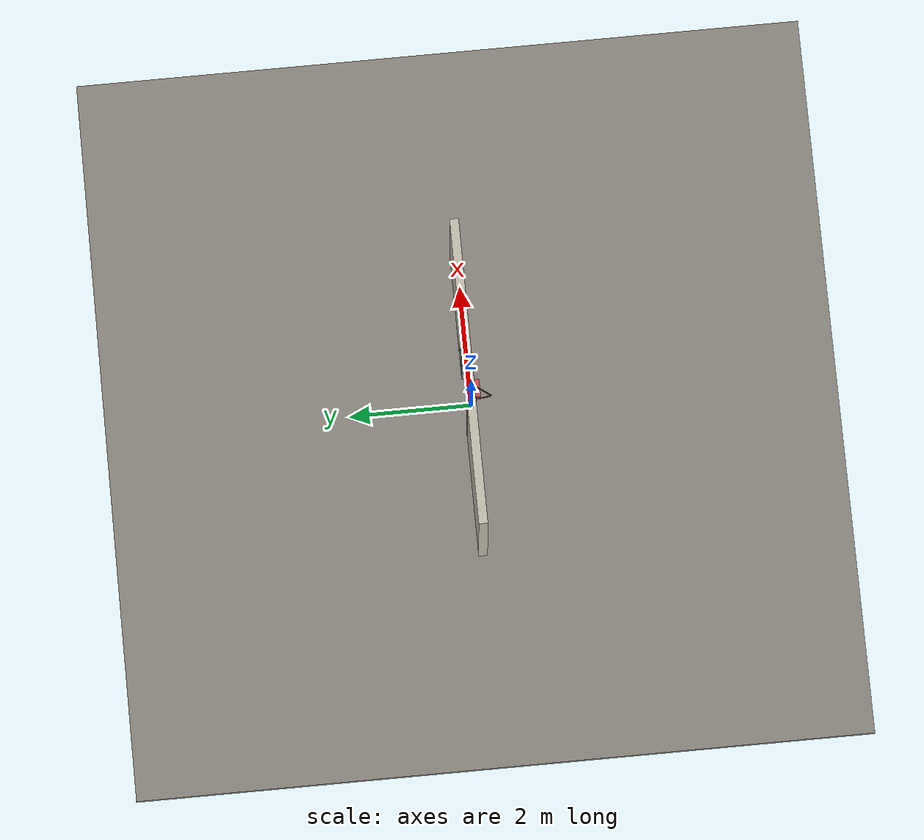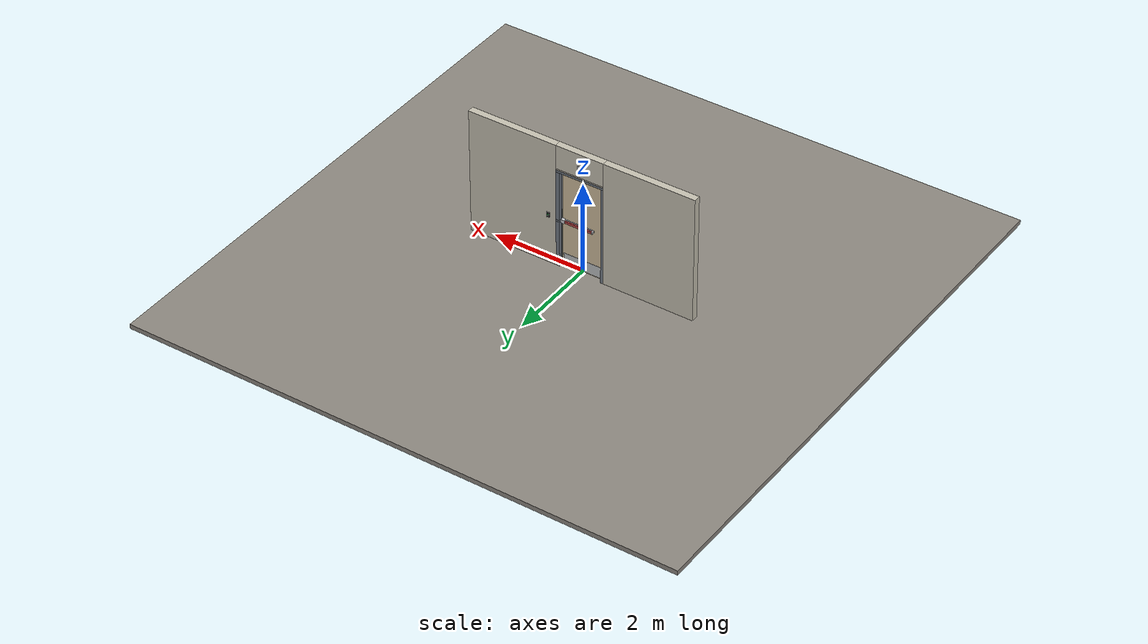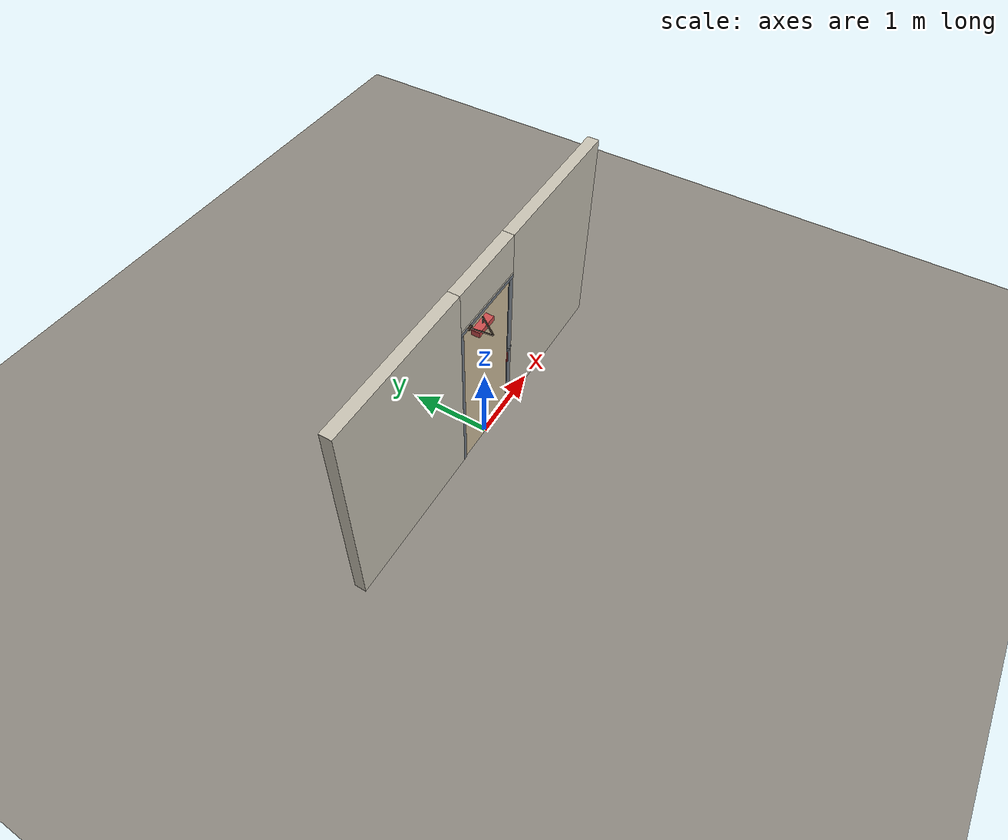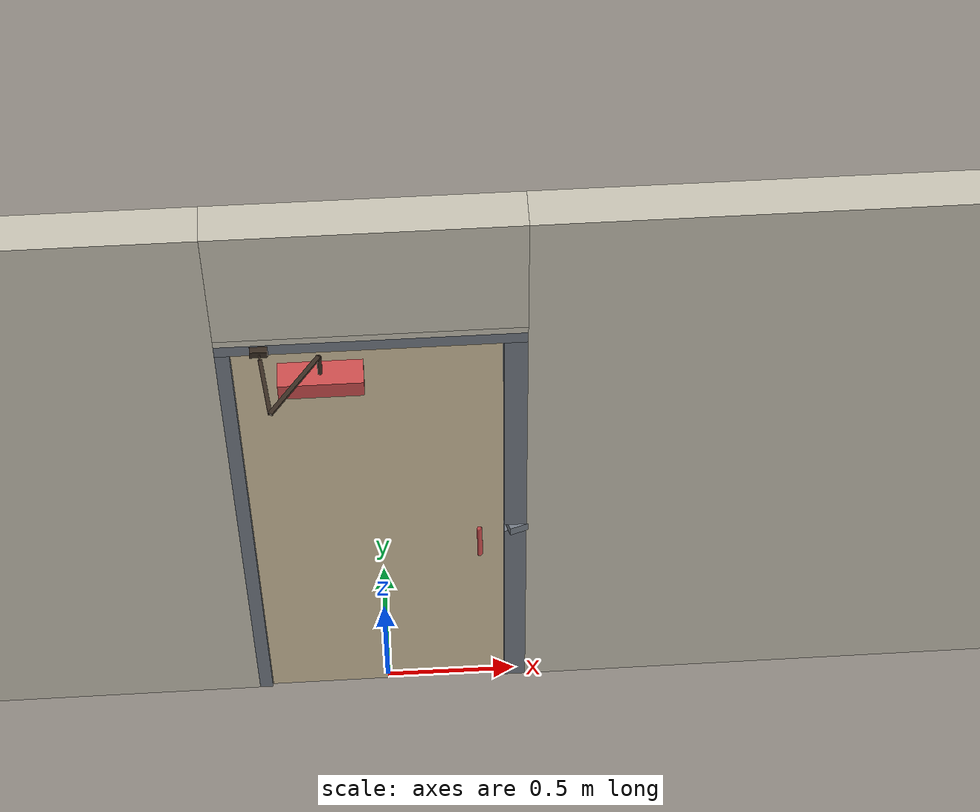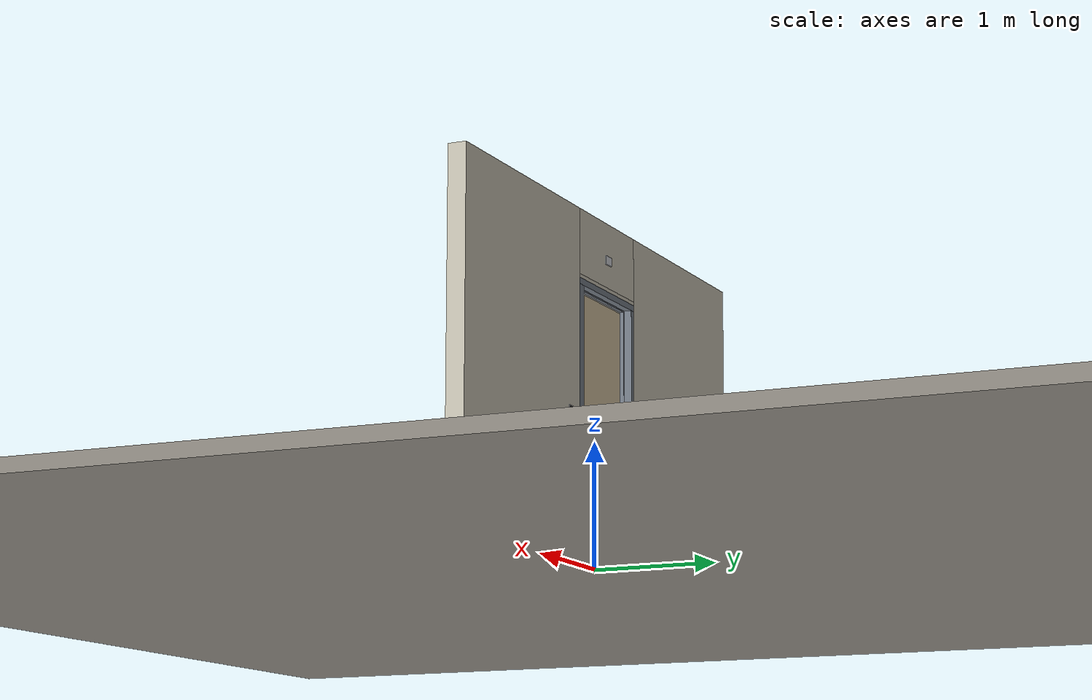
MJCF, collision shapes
<?xml version="1.0" ?>
<mujoco model="db0584_swing_single_full">
  <compiler angle="radian" meshdir="../../hardware" texturedir="../../textures" autolimits="true" inertiafromgeom="false"/>
  <option timestep="0.002" integrator="implicitfast" cone="elliptic" impratio="10" noslip_iterations="3">
    <flag multiccd="enable"/>
  </option>
  <size memory="16M"/>
  <default>
    <geom condim="4" solref="0.005 1" solimp="0.95 0.99 0.001"/>
    <joint solreflimit="0.005 1" solimplimit="0.95 0.99 0.001"/>
    <tendon solreflimit="0.005 1"/>
    <equality solref="0.002 1"/>
  </default>
  <visual>
    <headlight ambient="0.4 0.4 0.4" diffuse="0.7 0.7 0.7" specular="0.2 0.2 0.2"/>
    <quality shadowsize="4096"/>
    <map znear="0.01" zfar="60"/>
  </visual>
  <asset>
    <mesh name="closer_body_fdc4667657" file="closer_body_fdc4667657.obj"/>
    <mesh name="exit_sign_a6449bfa2c" file="exit_sign_a6449bfa2c.obj"/>
    <mesh name="hinge_ed08f20e7f" file="hinge_ed08f20e7f.obj"/>
    <mesh name="hinge_jamb_1278ce3e25" file="hinge_jamb_1278ce3e25.obj"/>
    <mesh name="pull_1e5d69a91a" file="pull_1e5d69a91a.obj"/>
    <mesh name="touchbar_pad_2729a067b4" file="touchbar_pad_2729a067b4.obj"/>
    <material name="mat_floor" rgba="0.55 0.53 0.5 1" specular="0.2" shininess="0.15" reflectance="0"/>
    <material name="mat_wall" rgba="0.78 0.76 0.7 1" specular="0.2" shininess="0.1" reflectance="0"/>
    <material name="mat_leaf" rgba="0.82 0.75 0.62 1" specular="0.23" shininess="0.56" reflectance="0.02"/>
    <material name="mat_hinge" rgba="0.65 0.66 0.68 1" specular="0.74" shininess="0.5" reflectance="0.36"/>
    <material name="mat_op_aluminum" rgba="0.8 0.81 0.83 1" specular="0.8" shininess="0.6" reflectance="0.4"/>
    <material name="mat_op_stainless" rgba="0.75 0.76 0.77 1" specular="0.8" shininess="0.65" reflectance="0.4"/>
    <material name="mat_bolt" rgba="0.75 0.76 0.77 1" specular="0.8" shininess="0.65" reflectance="0.4"/>
    <material name="mat_frame" rgba="0.45 0.48 0.52 1" specular="0.32" shininess="0.6" reflectance="0.08"/>
    <material name="mat_seal" rgba="0.1 0.1 0.1 1" specular="0.2" shininess="0.1" reflectance="0"/>
    <material name="mat_closer" rgba="0.22 0.17 0.13 1" specular="0.8" shininess="0.6" reflectance="0.4"/>
    <material name="mat_kick" rgba="0.75 0.76 0.77 1" specular="0.8" shininess="0.65" reflectance="0.4"/>
    <material name="mat_exit_sign" rgba="0.85 0.1 0.1 1" specular="0.2" shininess="0.6" reflectance="0"/>
    <material name="mat_sign_bracket" rgba="0.8 0.81 0.83 1" specular="0.8" shininess="0.6" reflectance="0.4"/>
    <material name="mat_wallreader" rgba="0.05 0.05 0.05 1" specular="0.38" shininess="0.3" reflectance="0.12"/>
    <material name="mat_rex" rgba="0.1 0.6 0.2 1" specular="0.2" shininess="0.6" reflectance="0"/>
    <texture name="skybox" type="skybox" builtin="gradient" rgb1="0.6 0.7 0.85" rgb2="0.9 0.92 0.95" width="256" height="256"/>
  </asset>
  <worldbody>
    <light name="sun" pos="1.5 -2.5 4" dir="-0.3 0.5 -0.8" directional="true" diffuse="0.8 0.8 0.8" specular="0.3 0.3 0.3" castshadow="true"/>
    <light name="fill" pos="-1.5 2.5 3" dir="0.3 -0.5 -0.7" directional="true" diffuse="0.35 0.35 0.4" castshadow="false"/>
    <camera name="robot_view" pos="0 -2.594313 1.812087" xyaxes="1 0 0 0 0.26963 0.962964" fovy="52"/>
    <camera name="far_view" pos="0 2.681312 1.812087" xyaxes="-1 0 0 0 -0.26963 0.962964" fovy="52"/>
    <camera name="iso" pos="2.004737 -2.172262 2.234138" xyaxes="0.741536 0.670913 0 -0.242917 0.268487 0.932151" fovy="46"/>
    <camera name="detail_handle" pos="0.5465 -0.882 1.32" xyaxes="0.97561 0.219512 0 -0.070934 0.315262 0.94635" fovy="38"/>
    <geom name="floor" type="box" size="6 6 0.05" pos="0 0 -0.05" material="mat_floor" group="0" contype="1" conaffinity="1" friction="0.8 0.005 0.0001" density="2400"/>
    <geom name="wall_left" type="box" size="0.99475 0.0725 1.3735" pos="-1.50525 0.0435 1.3735" material="mat_wall" group="0" contype="1" conaffinity="1" friction="0.6 0.005 0.0001" density="800"/>
    <geom name="wall_right" type="box" size="0.97975 0.0725 1.3735" pos="1.52025 0.0435 1.3735" material="mat_wall" group="0" contype="1" conaffinity="1" friction="0.6 0.005 0.0001" density="800"/>
    <geom name="wall_header" type="box" size="0.5255 0.0725 0.26" pos="0.015 0.0435 2.487" material="mat_wall" group="0" contype="1" conaffinity="1" friction="0.6 0.005 0.0001" density="800"/>
    <geom name="hinge_0_jamb" type="mesh" mesh="hinge_jamb_1278ce3e25" pos="-0.4575 -0.029 0.259" material="mat_hinge" group="1" contype="0" conaffinity="0" density="7850"/>
    <geom name="hinge_1_jamb" type="mesh" mesh="hinge_jamb_1278ce3e25" pos="-0.4575 -0.029 0.827" material="mat_hinge" group="1" contype="0" conaffinity="0" density="7850"/>
    <geom name="hinge_2_jamb" type="mesh" mesh="hinge_jamb_1278ce3e25" pos="-0.4575 -0.029 1.395" material="mat_hinge" group="1" contype="0" conaffinity="0" density="7850"/>
    <geom name="hinge_3_jamb" type="mesh" mesh="hinge_jamb_1278ce3e25" pos="-0.4575 -0.029 1.963" material="mat_hinge" group="1" contype="0" conaffinity="0" density="7850"/>
    <geom name="jamb_hinge" type="box" size="0.025 0.0725 1.0735" pos="-0.4855 0.0435 1.0735" material="mat_frame" group="0" contype="1" conaffinity="1" friction="0.6 0.005 0.0001" density="300"/>
    <geom name="strike_1040_wall_n" type="box" size="0.04 0.0305 0.02" pos="0.5005 0.0855 1.04" material="mat_frame" group="0" contype="1" conaffinity="1" friction="0.6 0.005 0.0001" density="300"/>
    <geom name="strike_1040_wall_p" type="box" size="0.04 0.008 0.02" pos="0.5005 0.025 1.04" material="mat_frame" group="0" contype="1" conaffinity="1" friction="0.6 0.005 0.0001" density="300"/>
    <geom name="strike_1040_ramp" type="box" size="0.04 0.034482 0.02" pos="0.508781 -0.0044 1.04" quat="0.989198 0 0 0.146587" material="mat_frame" group="0" contype="1" conaffinity="1" friction="0.12 0.005 0.0001" density="300"/>
    <geom name="strike_1040_back" type="box" size="0.0285 0.011 0.02" pos="0.512 0.044 1.04" material="mat_frame" group="0" contype="1" conaffinity="1" friction="0.6 0.005 0.0001" density="300"/>
    <geom name="jamb_strike_0" type="box" size="0.04 0.0725 0.51" pos="0.5005 0.0435 0.51" material="mat_frame" group="0" contype="1" conaffinity="1" friction="0.6 0.005 0.0001" density="300"/>
    <geom name="jamb_strike_1" type="box" size="0.04 0.0725 0.5435" pos="0.5005 0.0435 1.6035" material="mat_frame" group="0" contype="1" conaffinity="1" friction="0.6 0.005 0.0001" density="300"/>
    <geom name="jamb_head" type="box" size="0.5255 0.0725 0.025" pos="0.015 0.0435 2.172" material="mat_frame" group="0" contype="1" conaffinity="1" friction="0.6 0.005 0.0001" density="300"/>
    <geom name="head_stud" type="box" size="0.5255 0.0725 0.015" pos="0.015 0.0435 2.212" material="mat_wall" group="0" contype="1" conaffinity="1" friction="0.6 0.005 0.0001" density="500"/>
    <geom name="stop_hinge" type="box" size="0.0055 0.016 1.0735" pos="-0.455 0.0385 1.0735" material="mat_frame" group="0" contype="1" conaffinity="1" friction="0.6 0.005 0.0001" density="300"/>
    <geom name="stop_strike" type="box" size="0.0055 0.016 0.49625" pos="0.455 0.0385 0.49625" material="mat_frame" group="0" contype="1" conaffinity="1" friction="0.6 0.005 0.0001" density="300"/>
    <geom name="stop_strike_1" type="box" size="0.0055 0.016 0.52975" pos="0.455 0.0385 1.61725" material="mat_frame" group="0" contype="1" conaffinity="1" friction="0.6 0.005 0.0001" density="300"/>
    <geom name="stop_head" type="box" size="0.4605 0.016 0.0055" pos="0 0.0385 2.1415" material="mat_frame" group="0" contype="1" conaffinity="1" friction="0.6 0.005 0.0001" density="300"/>
    <geom name="seal_hinge" type="box" size="0.004 0.002 1.0735" pos="-0.4575 0.024 1.0735" material="mat_seal" group="1" contype="0" conaffinity="0" density="1100"/>
    <geom name="seal_strike" type="box" size="0.004 0.002 0.49625" pos="0.4575 0.024 0.49625" material="mat_seal" group="1" contype="0" conaffinity="0" density="1100"/>
    <geom name="seal_strike_1" type="box" size="0.004 0.002 0.52975" pos="0.4575 0.024 1.61725" material="mat_seal" group="1" contype="0" conaffinity="0" density="1100"/>
    <geom name="seal_head" type="box" size="0.4405 0.002 0.008" pos="0 0.024 2.135" material="mat_seal" group="1" contype="0" conaffinity="0" density="1100"/>
    <geom name="closer_bracket" type="box" size="0.03 0.012 0.014" pos="-0.3605 -0.041 2.177" material="mat_closer" group="1" contype="0" conaffinity="0" density="2700"/>
    <geom name="exit_sign" type="mesh" mesh="exit_sign_a6449bfa2c" pos="0 0.15 2.447" material="mat_exit_sign" group="2" contype="0" conaffinity="0" density="500"/>
    <geom name="exit_sign_bracket" type="box" size="0.05775 0.005 0.035" pos="0 0.1205 2.447" material="mat_sign_bracket" group="2" contype="0" conaffinity="0" density="7850"/>
    <geom name="rex_plate" type="box" size="0.04 0.003 0.06" pos="0.7105 0.119 1.1" material="mat_wallreader" group="1" contype="0" conaffinity="0" density="1000"/>
    <site name="approach_point" pos="0 -1.5 0" quat="1 0 0 0" size="0.05" rgba="0.2 0.9 0.2 0.5" group="4"/>
    <site name="goal_point" pos="0 1.5 0" quat="1 0 0 0" size="0.05" rgba="0.2 0.9 0.2 0.5" group="4"/>
    <site name="door_plane_center" pos="0 0 1.0735" quat="1 0 0 0" size="0.02" rgba="0.2 0.9 0.2 0.5" group="4"/>
    <body name="rex_button" pos="0.7105 0.122 1.1">
      <inertial pos="0 0.004 0" mass="0.010053" quat="0 0 0.707107 -0.707107" diaginertia="0.000001059 0.000001059 0.000002011"/>
      <joint name="rex_button_slide" type="slide" axis="0 -1 0" limited="true" range="0 0.004" damping="1" stiffness="1500" springref="-0.004" armature="0.1"/>
      <geom name="rex_button_geom" type="cylinder" size="0.02 0.004" pos="0 0.004 0" quat="0.707107 -0.707107 0 0" material="mat_rex" group="0" contype="1" conaffinity="1" friction="0.6 0.005 0.0001" density="1000"/>
    </body>
    <body name="leaf" pos="-0.4605 0 0">
      <inertial pos="0.427735 -0.013533 1.245477" mass="57.815147" quat="-0.495537 0.469438 0.515989 0.517519" diaginertia="3.673366515 27.704591628 31.270649321"/>
      <joint name="leaf_hinge" type="hinge" axis="0 0 -1" pos="0.003 -0.029 0" limited="true" range="0 1.570796" solreflimit="0.02 1" damping="12.268966" frictionloss="1.361343" stiffness="13.852846" springref="-2.233476" armature="0.02"/>
      <geom name="leaf_slab" type="box" size="0.457 0.022 1.067" pos="0.46 0 1.076" material="mat_leaf" group="0" contype="1" conaffinity="1" friction="0.42 0.005 0.0001" density="1"/>
      <geom name="hinge_0" type="mesh" mesh="hinge_ed08f20e7f" pos="0.003 -0.029 0.259" material="mat_hinge" group="1" contype="0" conaffinity="0" density="7850"/>
      <geom name="hinge_1" type="mesh" mesh="hinge_ed08f20e7f" pos="0.003 -0.029 0.827" material="mat_hinge" group="1" contype="0" conaffinity="0" density="7850"/>
      <geom name="hinge_2" type="mesh" mesh="hinge_ed08f20e7f" pos="0.003 -0.029 1.395" material="mat_hinge" group="1" contype="0" conaffinity="0" density="7850"/>
      <geom name="hinge_3" type="mesh" mesh="hinge_ed08f20e7f" pos="0.003 -0.029 1.963" material="mat_hinge" group="1" contype="0" conaffinity="0" density="7850"/>
      <geom name="leaf_exit_device_rail" type="box" size="0.31705 0.006 0.025" pos="0.51995 0.028 1.04" material="mat_op_aluminum" group="0" contype="1" conaffinity="1" friction="0.6 0.005 0.0001" density="3000"/>
      <geom name="leaf_exit_device_rail_end_n" type="box" size="0.01 0.0325 0.025" pos="0.2129 0.0545 1.04" material="mat_op_aluminum" group="0" contype="1" conaffinity="1" friction="0.6 0.005 0.0001" density="3000"/>
      <geom name="leaf_exit_device_rail_end_p" type="box" size="0.01 0.0325 0.025" pos="0.827 0.0545 1.04" material="mat_op_aluminum" group="0" contype="1" conaffinity="1" friction="0.6 0.005 0.0001" density="3000"/>
      <geom name="leaf_exit_device_case" type="box" size="0.034 0.034125 0.0375" pos="0.871 0.056125 1.04" material="mat_op_aluminum" group="0" contype="1" conaffinity="1" friction="0.6 0.005 0.0001" density="3000"/>
      <geom name="leaf_far_pull_n" type="mesh" mesh="pull_1e5d69a91a" pos="0.827 -0.022 1.04" quat="0.707107 0.707107 0 0" material="mat_op_stainless" group="1" contype="0" conaffinity="0" density="3000"/>
      <geom name="leaf_far_pull_col_n" type="capsule" size="0.0095 0.08" pos="0.827 -0.082 1.04" material="mat_op_stainless" group="3" contype="1" conaffinity="1" rgba="0.8 0.3 0.3 0.25" friction="0.7 0.01 0.0001" density="3000"/>
      <geom name="closer_body" type="mesh" mesh="closer_body_fdc4667657" pos="0.3 -0.022 2.054" quat="0.707107 0.707107 0 0" material="mat_closer" group="1" contype="0" conaffinity="0" density="2000"/>
      <geom name="closer_body_col" type="box" size="0.145 0.05 0.035" pos="0.3 -0.072 2.054" material="mat_closer" group="3" contype="1" conaffinity="1" rgba="0.8 0.3 0.3 0.25" friction="0.6 0.005 0.0001" density="2000"/>
      <geom name="closer_pinion_shaft" type="cylinder" size="0.008 0.0615" pos="0.3 -0.072 2.1155" material="mat_closer" group="1" contype="0" conaffinity="0" density="2700"/>
      <geom name="kick_plate_p" type="box" size="0.427 0.0008 0.125" pos="0.46 0.0228 0.144" material="mat_kick" group="2" contype="0" conaffinity="0" density="7900"/>
      <site name="leaf_far_pull_grip_n" pos="0.827 -0.082 1.04" quat="1 0 0 0" size="0.012" rgba="0.2 0.9 0.2 0.5" group="4"/>
      <site name="leaf_edge_mid" pos="0.917 0 1.067" quat="1 0 0 0" size="0.02" rgba="0.2 0.9 0.2 0.5" group="4"/>
      <body name="leaf_exit_device" pos="0.51995 0.022 1.04">
        <inertial pos="0 0.05 0" mass="4.76361" quat="0 0 0.707107 0.707107" diaginertia="0.00116113 0.137653089 0.138099678"/>
        <joint name="leaf_exit_device_slide" type="slide" axis="0 -1 0" limited="true" range="0 0.016" damping="117.294962" frictionloss="0.5" stiffness="700" springref="-0.011429" armature="0.15"/>
        <geom name="leaf_exit_device_pad" type="mesh" mesh="touchbar_pad_2729a067b4" pos="0 0 0" quat="-0.707107 0.707107 0 0" material="mat_op_aluminum" group="1" contype="0" conaffinity="0" density="3000"/>
        <geom name="leaf_exit_device_pad_col" type="box" size="0.29405 0.015 0.0225" pos="0 0.05 0" material="mat_op_aluminum" group="3" contype="1" conaffinity="1" rgba="0.8 0.3 0.3 0.25" friction="0.8 0.01 0.0001" density="3000"/>
        <site name="leaf_exit_device_push" pos="0 0.065 0" quat="1 0 0 0" size="0.015" rgba="0.2 0.9 0.2 0.5" group="4"/>
      </body>
      <body name="leaf_latch_bolt" pos="0.917 0.044 1.04">
        <inertial pos="-0.0055 0 0" mass="0.102826" quat="0.92388 -0.382683 0 0" diaginertia="0.000004365 0.000018287 0.000018287"/>
        <joint name="leaf_latch_bolt_slide" type="slide" axis="-1 0 0" limited="true" range="0 0.019" damping="2" frictionloss="0.3" stiffness="800" springref="-0.01" armature="0.1"/>
        <geom name="leaf_latch_bolt_capsule" type="capsule" size="0.0095 0.015" pos="-0.0055 0 0" quat="0.707107 0 0.707107 0" material="mat_bolt" group="0" contype="1" conaffinity="1" friction="0.2 0.005 0.0001" density="8500"/>
      </body>
      <body name="closer_arm_main" pos="0.3 -0.072 2.177" quat="0.454107 0 0 -0.890947">
        <inertial pos="0.14 0 0" mass="0.12096" quat="1 0 0 0" diaginertia="0.000003588 0.00079128 0.000792852"/>
        <joint name="closer_pinion" type="hinge" axis="0 0 1" limited="false" damping="0.01" armature="0.002"/>
        <geom name="closer_arm_main_geom" type="box" size="0.14 0.008 0.005" pos="0.14 0 0" material="mat_closer" group="1" contype="0" conaffinity="0" density="2700"/>
        <body name="closer_arm_fore" pos="0.28 0 0" quat="-0.373215 0 0 0.927745">
          <inertial pos="0.128088 0 0" mass="0.076531" quat="1 0 0 0" diaginertia="0.000001771 0.000437665 0.000438201"/>
          <joint name="closer_elbow" type="hinge" axis="0 0 1" limited="false" damping="0.01" armature="0.002"/>
          <geom name="closer_arm_fore_geom" type="box" size="0.1125 0.007 0.004" pos="0.1125 0 0" material="mat_closer" group="1" contype="0" conaffinity="0" density="2700"/>
          <geom name="closer_fore_neck" type="box" size="0.0175 0.003 0.003" pos="0.2425 0 0" material="mat_closer" group="1" contype="0" conaffinity="0" density="2700"/>
          <geom name="closer_fore_pivot" type="cylinder" size="0.005 0.012" pos="0.26 0 0" material="mat_closer" group="1" contype="0" conaffinity="0" density="2700"/>
        </body>
      </body>
    </body>
  </worldbody>
  <tendon>
    <fixed name="leaf_latch_bolt_coupling" limited="true" range="0 10">
      <joint joint="leaf_latch_bolt_slide" coef="1"/>
      <joint joint="leaf_exit_device_slide" coef="-1.357143"/>
    </fixed>
  </tendon>
  <equality>
    <connect name="closer_arm_connect" body1="closer_arm_fore" body2="world" anchor="0.26 0 0" active="true"/>
  </equality>
  <contact>
    <exclude body1="closer_arm_main" body2="leaf"/>
    <exclude body1="closer_arm_fore" body2="leaf"/>
    <exclude body1="closer_arm_main" body2="closer_arm_fore"/>
  </contact>
  <sensor>
    <jointpos name="leaf_hinge_pos" joint="leaf_hinge"/>
    <jointvel name="leaf_hinge_vel" joint="leaf_hinge"/>
    <jointpos name="leaf_exit_device_slide_pos" joint="leaf_exit_device_slide"/>
    <jointvel name="leaf_exit_device_slide_vel" joint="leaf_exit_device_slide"/>
    <jointpos name="leaf_latch_bolt_slide_pos" joint="leaf_latch_bolt_slide"/>
    <jointvel name="leaf_latch_bolt_slide_vel" joint="leaf_latch_bolt_slide"/>
    <jointpos name="rex_button_slide_pos" joint="rex_button_slide"/>
    <jointvel name="rex_button_slide_vel" joint="rex_button_slide"/>
  </sensor>
</mujoco>
